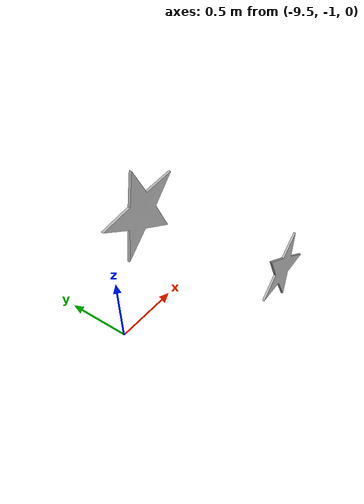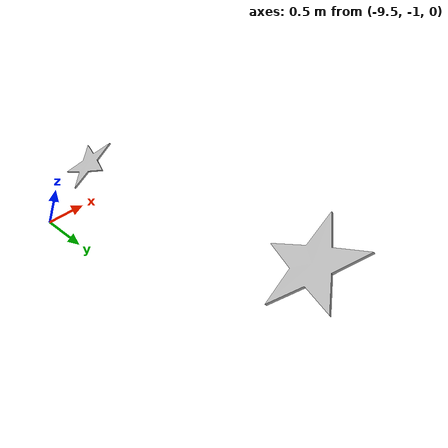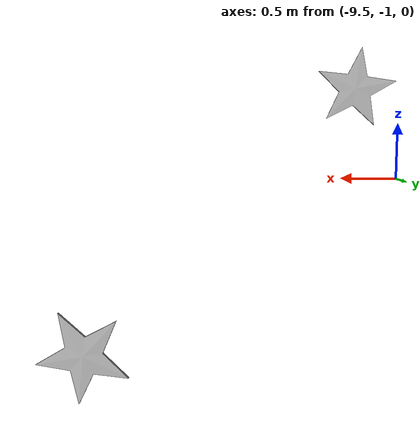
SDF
<?xml version="1.0"?>
<sdf version="1.5">
  <model name="underwater_starfish">
    <static>true</static>
    <link name="link">
      <visual name="visual">
        <geometry>
          <mesh>
            <uri>model://underwater_starfish/meshes/starfish.obj</uri>
          </mesh>
        </geometry>
      </visual>
    </link>
  </model>
</sdf>
